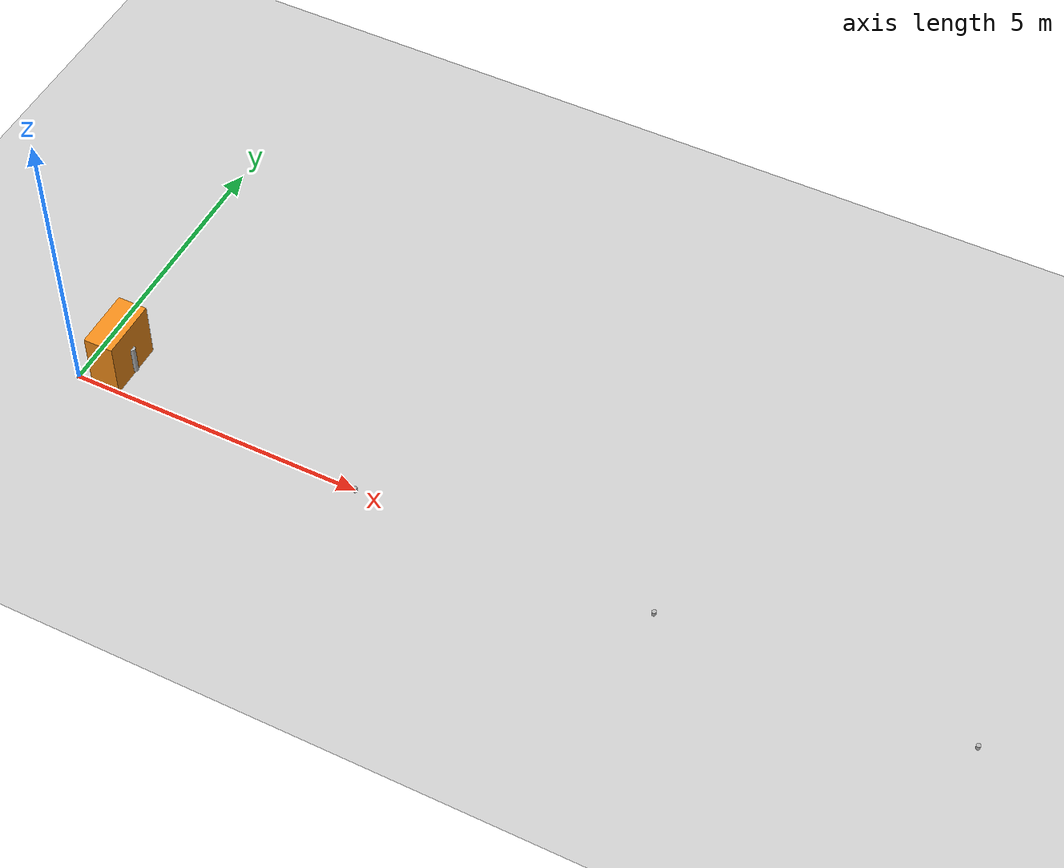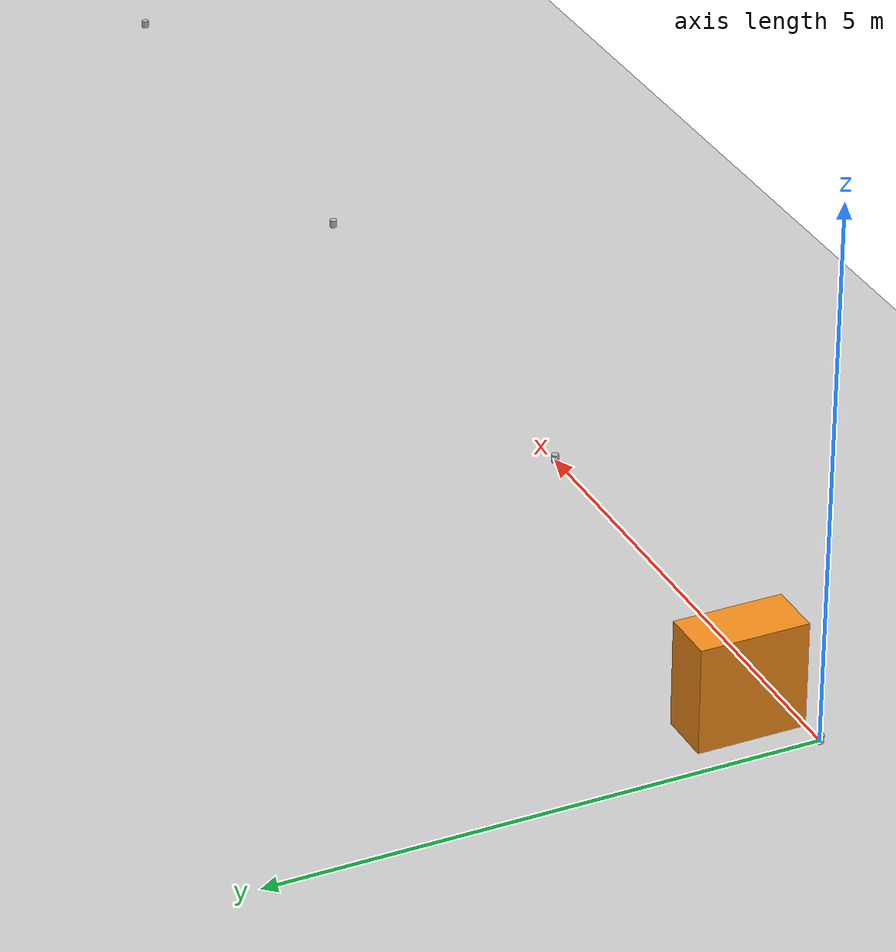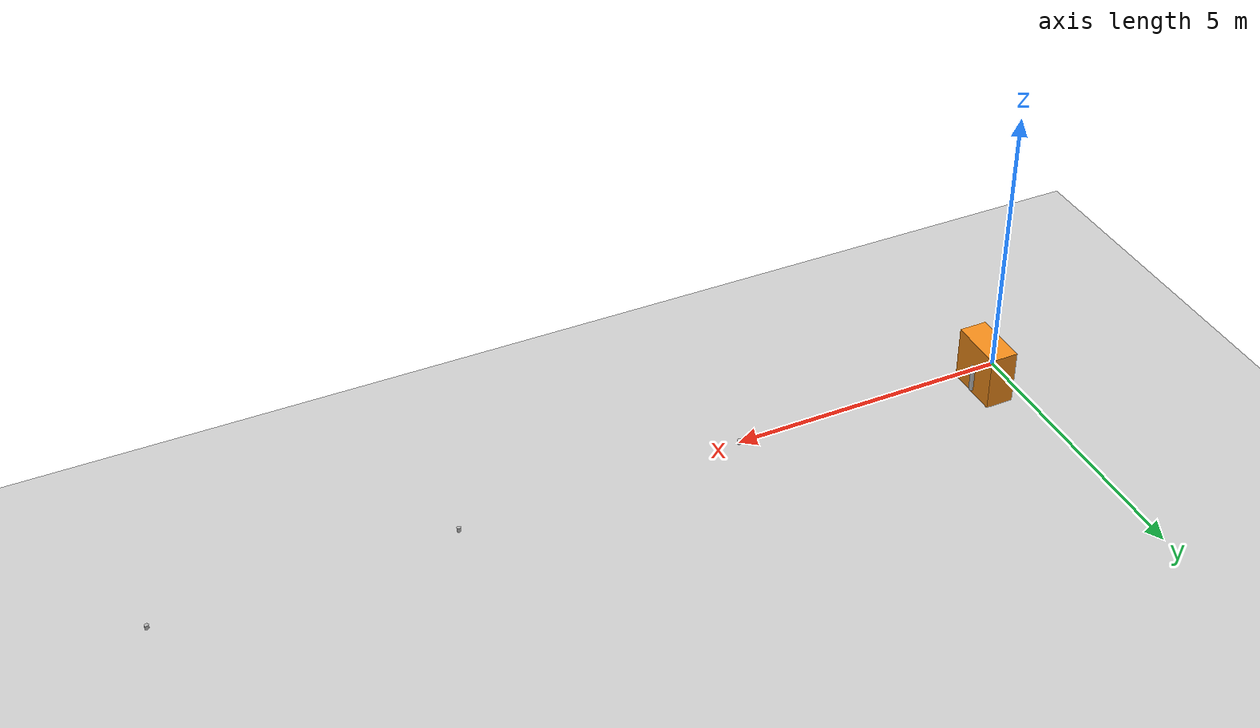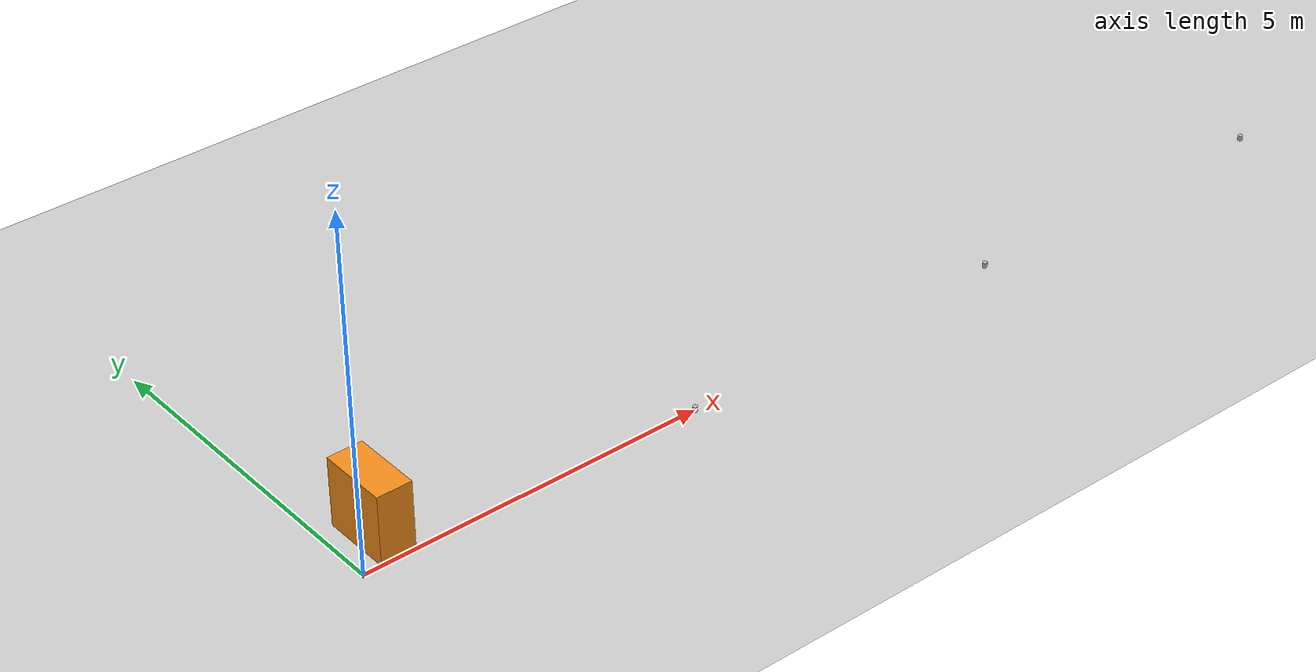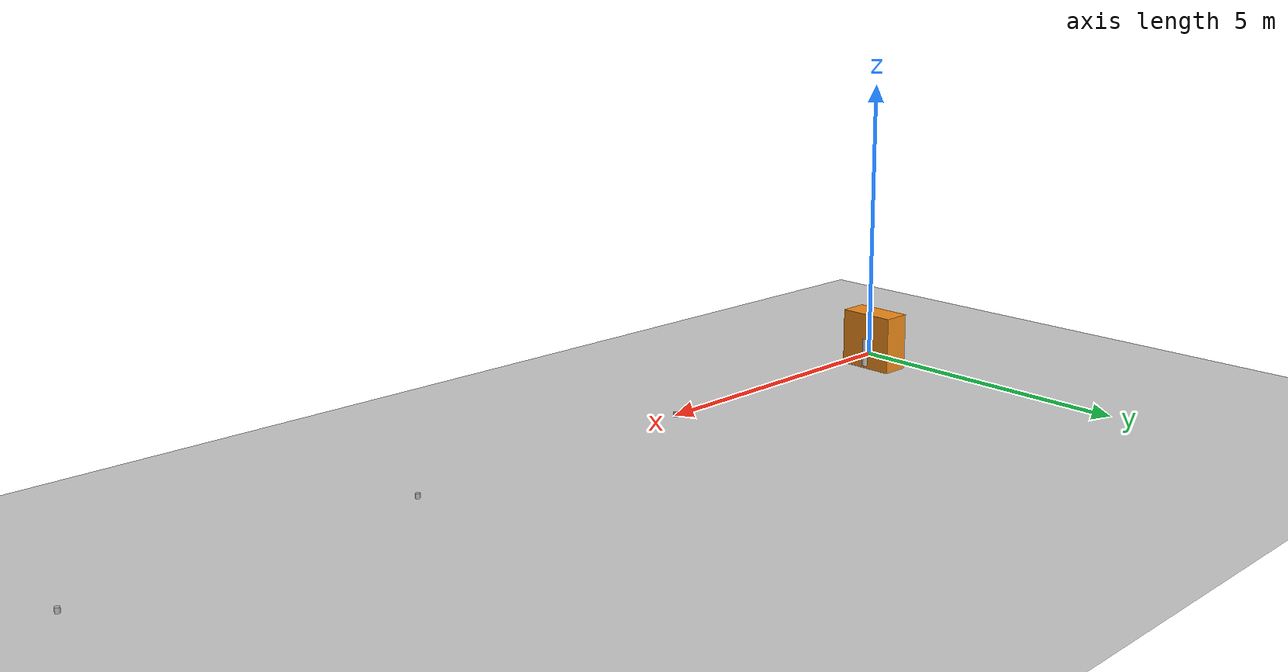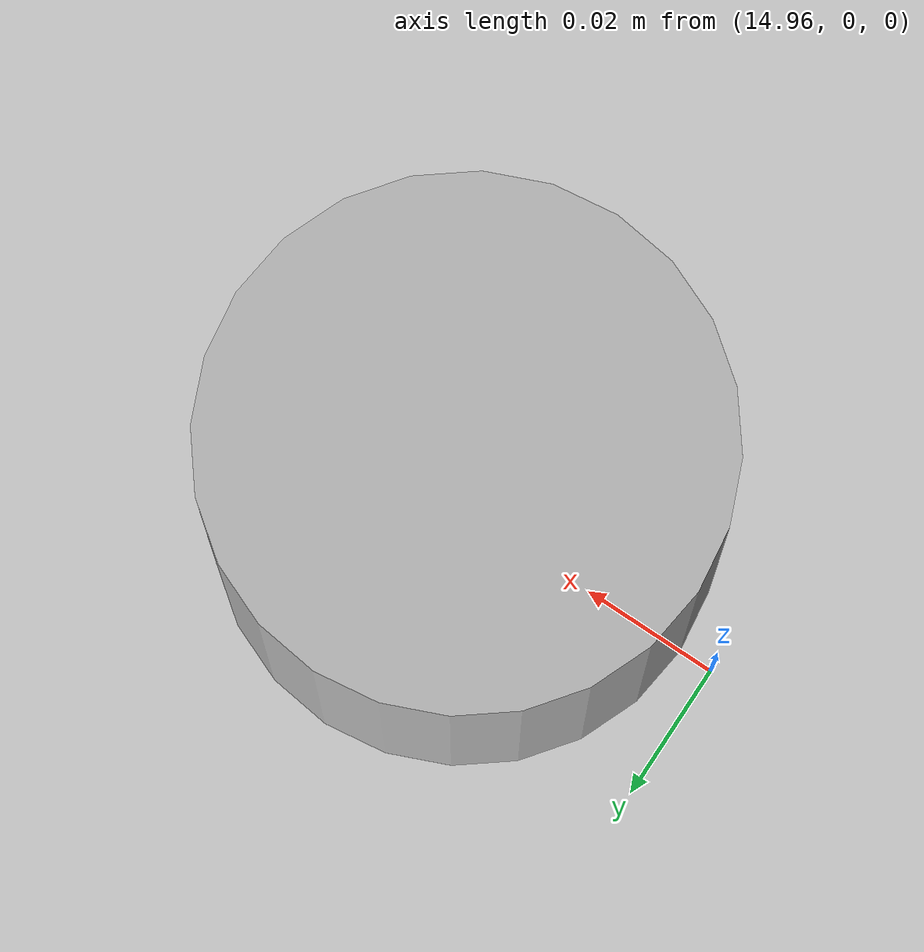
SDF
<?xml version="1.0"?>
<sdf version="1.5">
  <world name="default">
    <include>
      <uri>model://ground_plane</uri>
    </include>

    <include>
      <uri>model://sun</uri>
    </include>

    <plugin name="SimEvents" filename="libSimEventsPlugin.so">

    <session></session>

    <region>
      <name>start</name>
      <volume>
          <!-- min and max are sdf::Vector3 -->
          <!-- around the origin -->
          <min>-3 -3 -3</min>
          <max>3 3 3</max>
     </volume>
    </region>

    <region>
      <name>end</name>
      <volume>
        <!-- around 10,10  -->
        <min>7 7 0</min>
        <max>13 13 3</max>
      </volume>
    </region>

    <event>
      <name>NewBeer</name>
      <type>existence</type>
      <model>beer</model>
    </event>

    <event>
      <name>Inactive</name>
      <type>sim_state</type>
      <!-- elements can be active or not,
      and this property can be set at runtime or in the world file
      with the active element
      by default, they are.
      -->
      <active>false</active>
    </event>

    <event>
      <name>All_spawn_and_delete</name>
      <type>existence</type>
      <!-- no model  is specified -->
    </event>

    <!-- when the simulation state changes (pause/play) -->
    <event>
      <name>Sim</name>
      <type>sim_state</type>
    </event>

    <!-- bounding box intersection event-->
    <event>
      <name>Can1_in_0_0</name>
      <type>inclusion</type>
      <model>can1</model>
      <region>start</region>
    </event>

    <!-- bounding box inclusion event -->
    <event>
      <name>Can1_in_10_10</name>
      <type>inclusion</type>
      <model>can1</model>
      <region>end</region>
    </event>

    <!-- Joint trigger events -->
    <!-- position (linear or angular) -->
    <event>
      <name>joint_position</name>
      <type>joint</type>
      <model>revoluter</model>
      <joint>joint</joint>
      <range>
        <type>position</type>
        <min>5</min>
        <max>10</max>
      </range>
    </event>

    <!-- Angle: must be in range -PI to PI  -->
    <event>
      <name>joint_angle</name>
      <type>joint</type>
      <model>revoluter</model>
      <joint>joint</joint>
      <range>
        <type>normalized_angle</type>
        <min>3</min>
        <max>3.1416</max>
      </range>
    </event>

    <!-- Velocity -->
    <event>
      <name>joint_velocity</name>
      <type>joint</type>
      <model>revoluter</model>
      <joint>joint</joint>
      <range>
        <type>velocity</type>
        <min>3</min>
        <max>3.3</max>
      </range>
    </event>

    <!-- Applied Force -->
    <event>
      <name>joint_force</name>
      <type>joint</type>
      <model>revoluter</model>
      <joint>joint</joint>
        <type>applied_force</type>
        <range>
          <type>applied_force</type>
          <min>3</min>
          <max>3.3</max>
        </range>
    </event>

    <!-- Close the plugin element  -->
    </plugin>

    <!--
    spawn a few beers in the world (not coke cans, they have
    meshes that can't be loaded with all engines yet
    -->
    <include>
      <pose>0 0 0 0 0 0</pose>
      <name>can1</name>
      <uri>model://beer</uri>
    </include>

    <include>
      <pose>5 0 0 0 0 0</pose>
      <name>can2</name>
      <uri>model://beer</uri>
    </include>

    <include>
      <pose>10 0 0 0 0 0</pose>
      <uri>model://beer</uri>
      <name>can3</name>
    </include>

    <include>
      <pose>15 0 0 0 0 0</pose>
      <name>can4</name>
      <uri>model://beer</uri>
    </include>

<!--
Model with a revolute joint
-->
    <model name='revoluter'>
        <pose>0.5 0.5 0.5 0 0 0</pose>
        <link name='base'>
        <pose>0 0 0 0 -0 0</pose>
          <visual name='visual'>
            <geometry>
              <box>
                <size>0.5 1 1</size>
              </box>
            </geometry>
            <material>
              <script>
                <uri>file://media/materials/scripts/gazebo.material</uri>
                <name>Gazebo/Orange</name>
              </script>
            </material>
          </visual>
          <collision name='collision'>
            <geometry>
              <box>
                <size>0.5 1 1</size>
              </box>
            </geometry>
          </collision>
        </link>

        <link name='needle'>
          <pose>0.25 0 -0.2 0 -0 0</pose>
            <visual name='visual'>
              <geometry>
                <cylinder>
                  <radius>0.05</radius>
                  <length>0.5</length>
                </cylinder>
              </geometry>
            </visual>

          <collision name='collision'>
            <geometry>
              <cylinder>
                <radius>0.05</radius>
                <length>0.5</length>
              </cylinder>
            </geometry>
           </collision>
        </link>

        <joint name='joint' type='revolute'>
          <parent>needle</parent>
          <child>base</child>

          <pose>0 0 0 0 0 0</pose>
          <axis>
            <xyz>1 0 0</xyz>
          </axis>
        </joint>

        <!-- this joint keeps the model from moving around -->
        <joint name ='fix' type='fixed'>
          <parent>world</parent>
          <child>base</child>
        </joint>

    </model>

  </world>
</sdf>

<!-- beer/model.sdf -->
<sdf version='1.4'>
  <model name="beer">
    <link name='link'>
      <pose>0 0 0 0 0 0</pose>
      <inertial>
        <mass>0.390</mass>
        <inertia>
          <ixx>0.00058</ixx>
          <ixy>0</ixy>
          <ixz>0</ixz>
          <iyy>0.00058</iyy>
          <iyz>0</iyz>
          <izz>0.00025</izz>
        </inertia>
      </inertial>
      <collision name='collision'>
        <geometry>
          <cylinder>
            <radius>0.03500</radius>
            <length>0.12000</length>
          </cylinder>
        </geometry>
      </collision>

      <visual name='visual'>
        <geometry>
          <cylinder>
            <radius>0.03500</radius>
            <length>0.12000</length>
          </cylinder>
        </geometry>

        <material>
          <script>
            <uri>model://beer/materials/scripts</uri>
            <uri>model://beer/materials/textures</uri>
            <name>Beer/Diffuse</name>
          </script>
        </material>
      </visual>
    </link>
  </model>
</sdf>
